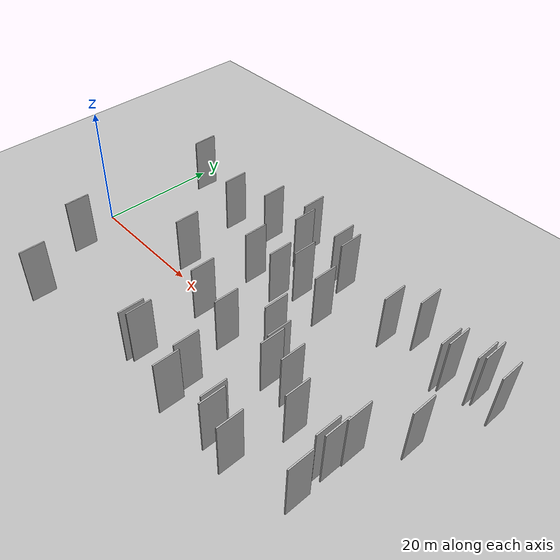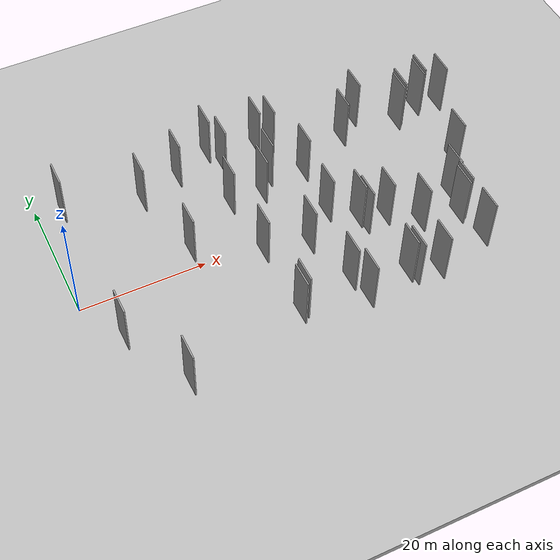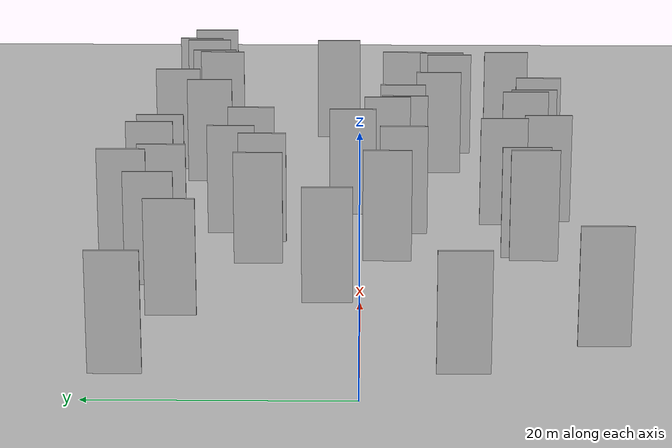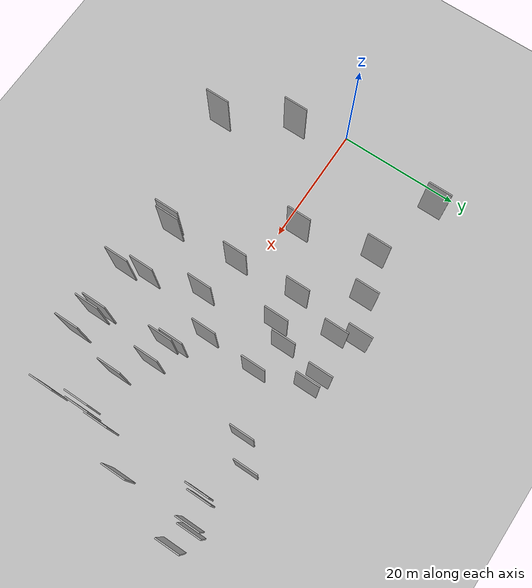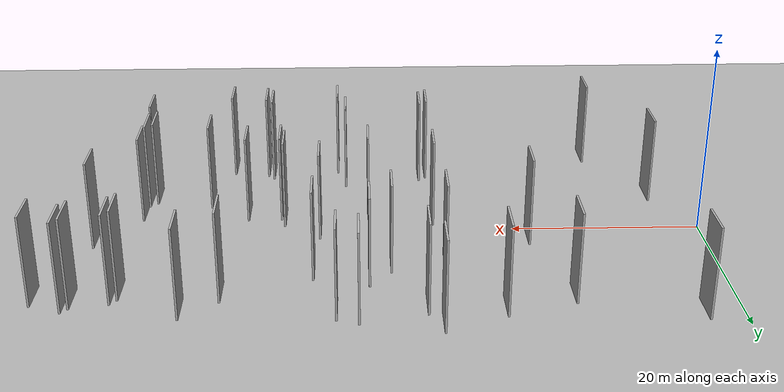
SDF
<?xml version="1.0" encoding="utf-8"?>

<sdf version="1.6">

   <world name="default">

      <gui fullscreen="0">

         <camera name="user_camera">

            <pose>-15 0 4.57585 0 0 0</pose>

            <view_controller>orbit</view_controller>

         </camera>

      </gui>

      <scene>

         <sky>

           <clouds>

             <speed>12</speed>

           </clouds>

         </sky>

         <ambient>0.4 0.4 0.4 1</ambient>

         <background>0.7 0.7 0.7 1</background>

         <shadows>1</shadows>

      </scene>

      <gravity>0 0 -9.8066</gravity>

      <magnetic_field>6e-06 2.3e-05 -4.2e-05</magnetic_field>

      <physics default="0" name="default_physics" type="ode">

         <ode>

            <solver>

               <type>quick</type>

               <iters>10</iters>

               <sor>1.0</sor>

               <use_dynamic_moi_rescaling>0</use_dynamic_moi_rescaling>

            </solver>

            <constraints>

               <cfm>0</cfm>

               <erp>0.2</erp>

               <contact_max_correcting_vel>100</contact_max_correcting_vel>

               <contact_surface_layer>0.001</contact_surface_layer>

            </constraints>

         </ode>

         <max_step_size>0.004</max_step_size>

         <real_time_factor>1</real_time_factor>

         <real_time_update_rate>250</real_time_update_rate>

      </physics>

      <light name="sun" type="directional">

         <cast_shadows>1</cast_shadows>

         <pose>0 0 10 0 0 0</pose>

         <diffuse>0.8 0.8 0.8 1</diffuse>

         <specular>0.2 0.2 0.2 1</specular>

         <attenuation>

            <range>1000</range>

            <constant>0.9</constant>

            <linear>0.01</linear>

            <quadratic>0.001</quadratic>

         </attenuation>

         <direction>-0.5 0.1 -0.9</direction>

      </light>

      <include>

         <name>ground_plane_1</name>

         <uri>model://HANNAS_ground_plane</uri>

         <pose>0 0 0  0 0 0</pose>

      </include>

      <include>

         <name>ground_plane_2</name>

         <uri>model://HANNAS_ground_plane</uri>

         <pose>100 0 0  0 0 0</pose>

      </include>

      <model name="HANNAS_wall_1">

         <static>1</static>

         <pose frame="">58.6707 -8.1486 0.0 0.000000 0.000000 1.570796</pose>

         <link name="link">

            <pose frame="">0 0 5.00 0 0 0</pose>

            <collision name="collision">

               <geometry>

                  <box>

                     <size>4.00 0.2 10.00</size>

                  </box>

               </geometry>

               <max_contacts>10</max_contacts>

               <surface>

                  <contact>

                     <ode/>

                  </contact>

                  <bounce/>

                  <friction>

                     <torsional>

                        <ode/>

                     </torsional>

                     <ode/>

                  </friction>

               </surface>

            </collision>

            <visual name="visual">

               <cast_shadows>0</cast_shadows>

               <geometry>

                  <box>

                     <size>4.00 0.2 10.00</size>

                  </box>

               </geometry>

               <material>

                  <script>

                     <uri>model://HANNAS_wall/materials/scripts</uri>

                     <uri>model://HANNAS_wall/materials/textures</uri>

                     <name>vrc/HANNAS_wall</name>

                  </script>

               </material>

            </visual>

            <self_collide>0</self_collide>

            <enable_wind>0</enable_wind>

            <kinematic>0</kinematic>

         </link>

      </model>

      <model name="HANNAS_wall_2">

         <static>1</static>

         <pose frame="">46.1520 -14.4863 0.0 0.000000 0.000000 1.570796</pose>

         <link name="link">

            <pose frame="">0 0 5.00 0 0 0</pose>

            <collision name="collision">

               <geometry>

                  <box>

                     <size>4.00 0.2 10.00</size>

                  </box>

               </geometry>

               <max_contacts>10</max_contacts>

               <surface>

                  <contact>

                     <ode/>

                  </contact>

                  <bounce/>

                  <friction>

                     <torsional>

                        <ode/>

                     </torsional>

                     <ode/>

                  </friction>

               </surface>

            </collision>

            <visual name="visual">

               <cast_shadows>0</cast_shadows>

               <geometry>

                  <box>

                     <size>4.00 0.2 10.00</size>

                  </box>

               </geometry>

               <material>

                  <script>

                     <uri>model://HANNAS_wall/materials/scripts</uri>

                     <uri>model://HANNAS_wall/materials/textures</uri>

                     <name>vrc/HANNAS_wall</name>

                  </script>

               </material>

            </visual>

            <self_collide>0</self_collide>

            <enable_wind>0</enable_wind>

            <kinematic>0</kinematic>

         </link>

      </model>

      <model name="HANNAS_wall_3">

         <static>1</static>

         <pose frame="">59.5834 12.9654 0.0 0.000000 0.000000 1.570796</pose>

         <link name="link">

            <pose frame="">0 0 5.00 0 0 0</pose>

            <collision name="collision">

               <geometry>

                  <box>

                     <size>4.00 0.2 10.00</size>

                  </box>

               </geometry>

               <max_contacts>10</max_contacts>

               <surface>

                  <contact>

                     <ode/>

                  </contact>

                  <bounce/>

                  <friction>

                     <torsional>

                        <ode/>

                     </torsional>

                     <ode/>

                  </friction>

               </surface>

            </collision>

            <visual name="visual">

               <cast_shadows>0</cast_shadows>

               <geometry>

                  <box>

                     <size>4.00 0.2 10.00</size>

                  </box>

               </geometry>

               <material>

                  <script>

                     <uri>model://HANNAS_wall/materials/scripts</uri>

                     <uri>model://HANNAS_wall/materials/textures</uri>

                     <name>vrc/HANNAS_wall</name>

                  </script>

               </material>

            </visual>

            <self_collide>0</self_collide>

            <enable_wind>0</enable_wind>

            <kinematic>0</kinematic>

         </link>

      </model>

      <model name="HANNAS_wall_4">

         <static>1</static>

         <pose frame="">53.4287 16.6725 0.0 0.000000 0.000000 1.570796</pose>

         <link name="link">

            <pose frame="">0 0 5.00 0 0 0</pose>

            <collision name="collision">

               <geometry>

                  <box>

                     <size>4.00 0.2 10.00</size>

                  </box>

               </geometry>

               <max_contacts>10</max_contacts>

               <surface>

                  <contact>

                     <ode/>

                  </contact>

                  <bounce/>

                  <friction>

                     <torsional>

                        <ode/>

                     </torsional>

                     <ode/>

                  </friction>

               </surface>

            </collision>

            <visual name="visual">

               <cast_shadows>0</cast_shadows>

               <geometry>

                  <box>

                     <size>4.00 0.2 10.00</size>

                  </box>

               </geometry>

               <material>

                  <script>

                     <uri>model://HANNAS_wall/materials/scripts</uri>

                     <uri>model://HANNAS_wall/materials/textures</uri>

                     <name>vrc/HANNAS_wall</name>

                  </script>

               </material>

            </visual>

            <self_collide>0</self_collide>

            <enable_wind>0</enable_wind>

            <kinematic>0</kinematic>

         </link>

      </model>

      <model name="HANNAS_wall_5">

         <static>1</static>

         <pose frame="">33.2438 8.2366 0.0 0.000000 0.000000 1.570796</pose>

         <link name="link">

            <pose frame="">0 0 5.00 0 0 0</pose>

            <collision name="collision">

               <geometry>

                  <box>

                     <size>4.00 0.2 10.00</size>

                  </box>

               </geometry>

               <max_contacts>10</max_contacts>

               <surface>

                  <contact>

                     <ode/>

                  </contact>

                  <bounce/>

                  <friction>

                     <torsional>

                        <ode/>

                     </torsional>

                     <ode/>

                  </friction>

               </surface>

            </collision>

            <visual name="visual">

               <cast_shadows>0</cast_shadows>

               <geometry>

                  <box>

                     <size>4.00 0.2 10.00</size>

                  </box>

               </geometry>

               <material>

                  <script>

                     <uri>model://HANNAS_wall/materials/scripts</uri>

                     <uri>model://HANNAS_wall/materials/textures</uri>

                     <name>vrc/HANNAS_wall</name>

                  </script>

               </material>

            </visual>

            <self_collide>0</self_collide>

            <enable_wind>0</enable_wind>

            <kinematic>0</kinematic>

         </link>

      </model>

      <model name="HANNAS_wall_6">

         <static>1</static>

         <pose frame="">48.3160 -3.7175 0.0 0.000000 0.000000 1.570796</pose>

         <link name="link">

            <pose frame="">0 0 5.00 0 0 0</pose>

            <collision name="collision">

               <geometry>

                  <box>

                     <size>4.00 0.2 10.00</size>

                  </box>

               </geometry>

               <max_contacts>10</max_contacts>

               <surface>

                  <contact>

                     <ode/>

                  </contact>

                  <bounce/>

                  <friction>

                     <torsional>

                        <ode/>

                     </torsional>

                     <ode/>

                  </friction>

               </surface>

            </collision>

            <visual name="visual">

               <cast_shadows>0</cast_shadows>

               <geometry>

                  <box>

                     <size>4.00 0.2 10.00</size>

                  </box>

               </geometry>

               <material>

                  <script>

                     <uri>model://HANNAS_wall/materials/scripts</uri>

                     <uri>model://HANNAS_wall/materials/textures</uri>

                     <name>vrc/HANNAS_wall</name>

                  </script>

               </material>

            </visual>

            <self_collide>0</self_collide>

            <enable_wind>0</enable_wind>

            <kinematic>0</kinematic>

         </link>

      </model>

      <model name="HANNAS_wall_7">

         <static>1</static>

         <pose frame="">63.9426 14.4578 0.0 0.000000 0.000000 1.570796</pose>

         <link name="link">

            <pose frame="">0 0 5.00 0 0 0</pose>

            <collision name="collision">

               <geometry>

                  <box>

                     <size>4.00 0.2 10.00</size>

                  </box>

               </geometry>

               <max_contacts>10</max_contacts>

               <surface>

                  <contact>

                     <ode/>

                  </contact>

                  <bounce/>

                  <friction>

                     <torsional>

                        <ode/>

                     </torsional>

                     <ode/>

                  </friction>

               </surface>

            </collision>

            <visual name="visual">

               <cast_shadows>0</cast_shadows>

               <geometry>

                  <box>

                     <size>4.00 0.2 10.00</size>

                  </box>

               </geometry>

               <material>

                  <script>

                     <uri>model://HANNAS_wall/materials/scripts</uri>

                     <uri>model://HANNAS_wall/materials/textures</uri>

                     <name>vrc/HANNAS_wall</name>

                  </script>

               </material>

            </visual>

            <self_collide>0</self_collide>

            <enable_wind>0</enable_wind>

            <kinematic>0</kinematic>

         </link>

      </model>

      <model name="HANNAS_wall_8">

         <static>1</static>

         <pose frame="">18.7328 2.5843 0.0 0.000000 0.000000 1.570796</pose>

         <link name="link">

            <pose frame="">0 0 5.00 0 0 0</pose>

            <collision name="collision">

               <geometry>

                  <box>

                     <size>4.00 0.2 10.00</size>

                  </box>

               </geometry>

               <max_contacts>10</max_contacts>

               <surface>

                  <contact>

                     <ode/>

                  </contact>

                  <bounce/>

                  <friction>

                     <torsional>

                        <ode/>

                     </torsional>

                     <ode/>

                  </friction>

               </surface>

            </collision>

            <visual name="visual">

               <cast_shadows>0</cast_shadows>

               <geometry>

                  <box>

                     <size>4.00 0.2 10.00</size>

                  </box>

               </geometry>

               <material>

                  <script>

                     <uri>model://HANNAS_wall/materials/scripts</uri>

                     <uri>model://HANNAS_wall/materials/textures</uri>

                     <name>vrc/HANNAS_wall</name>

                  </script>

               </material>

            </visual>

            <self_collide>0</self_collide>

            <enable_wind>0</enable_wind>

            <kinematic>0</kinematic>

         </link>

      </model>

      <model name="HANNAS_wall_9">

         <static>1</static>

         <pose frame="">36.5251 17.9027 0.0 0.000000 0.000000 1.570796</pose>

         <link name="link">

            <pose frame="">0 0 5.00 0 0 0</pose>

            <collision name="collision">

               <geometry>

                  <box>

                     <size>4.00 0.2 10.00</size>

                  </box>

               </geometry>

               <max_contacts>10</max_contacts>

               <surface>

                  <contact>

                     <ode/>

                  </contact>

                  <bounce/>

                  <friction>

                     <torsional>

                        <ode/>

                     </torsional>

                     <ode/>

                  </friction>

               </surface>

            </collision>

            <visual name="visual">

               <cast_shadows>0</cast_shadows>

               <geometry>

                  <box>

                     <size>4.00 0.2 10.00</size>

                  </box>

               </geometry>

               <material>

                  <script>

                     <uri>model://HANNAS_wall/materials/scripts</uri>

                     <uri>model://HANNAS_wall/materials/textures</uri>

                     <name>vrc/HANNAS_wall</name>

                  </script>

               </material>

            </visual>

            <self_collide>0</self_collide>

            <enable_wind>0</enable_wind>

            <kinematic>0</kinematic>

         </link>

      </model>

      <model name="HANNAS_wall_10">

         <static>1</static>

         <pose frame="">4.0936 -7.6153 0.0 0.000000 0.000000 1.570796</pose>

         <link name="link">

            <pose frame="">0 0 5.00 0 0 0</pose>

            <collision name="collision">

               <geometry>

                  <box>

                     <size>4.00 0.2 10.00</size>

                  </box>

               </geometry>

               <max_contacts>10</max_contacts>

               <surface>

                  <contact>

                     <ode/>

                  </contact>

                  <bounce/>

                  <friction>

                     <torsional>

                        <ode/>

                     </torsional>

                     <ode/>

                  </friction>

               </surface>

            </collision>

            <visual name="visual">

               <cast_shadows>0</cast_shadows>

               <geometry>

                  <box>

                     <size>4.00 0.2 10.00</size>

                  </box>

               </geometry>

               <material>

                  <script>

                     <uri>model://HANNAS_wall/materials/scripts</uri>

                     <uri>model://HANNAS_wall/materials/textures</uri>

                     <name>vrc/HANNAS_wall</name>

                  </script>

               </material>

            </visual>

            <self_collide>0</self_collide>

            <enable_wind>0</enable_wind>

            <kinematic>0</kinematic>

         </link>

      </model>

      <model name="HANNAS_wall_11">

         <static>1</static>

         <pose frame="">67.7503 13.9354 0.0 0.000000 0.000000 1.570796</pose>

         <link name="link">

            <pose frame="">0 0 5.00 0 0 0</pose>

            <collision name="collision">

               <geometry>

                  <box>

                     <size>4.00 0.2 10.00</size>

                  </box>

               </geometry>

               <max_contacts>10</max_contacts>

               <surface>

                  <contact>

                     <ode/>

                  </contact>

                  <bounce/>

                  <friction>

                     <torsional>

                        <ode/>

                     </torsional>

                     <ode/>

                  </friction>

               </surface>

            </collision>

            <visual name="visual">

               <cast_shadows>0</cast_shadows>

               <geometry>

                  <box>

                     <size>4.00 0.2 10.00</size>

                  </box>

               </geometry>

               <material>

                  <script>

                     <uri>model://HANNAS_wall/materials/scripts</uri>

                     <uri>model://HANNAS_wall/materials/textures</uri>

                     <name>vrc/HANNAS_wall</name>

                  </script>

               </material>

            </visual>

            <self_collide>0</self_collide>

            <enable_wind>0</enable_wind>

            <kinematic>0</kinematic>

         </link>

      </model>

      <model name="HANNAS_wall_12">

         <static>1</static>

         <pose frame="">9.6535 -18.3392 0.0 0.000000 0.000000 1.570796</pose>

         <link name="link">

            <pose frame="">0 0 5.00 0 0 0</pose>

            <collision name="collision">

               <geometry>

                  <box>

                     <size>4.00 0.2 10.00</size>

                  </box>

               </geometry>

               <max_contacts>10</max_contacts>

               <surface>

                  <contact>

                     <ode/>

                  </contact>

                  <bounce/>

                  <friction>

                     <torsional>

                        <ode/>

                     </torsional>

                     <ode/>

                  </friction>

               </surface>

            </collision>

            <visual name="visual">

               <cast_shadows>0</cast_shadows>

               <geometry>

                  <box>

                     <size>4.00 0.2 10.00</size>

                  </box>

               </geometry>

               <material>

                  <script>

                     <uri>model://HANNAS_wall/materials/scripts</uri>

                     <uri>model://HANNAS_wall/materials/textures</uri>

                     <name>vrc/HANNAS_wall</name>

                  </script>

               </material>

            </visual>

            <self_collide>0</self_collide>

            <enable_wind>0</enable_wind>

            <kinematic>0</kinematic>

         </link>

      </model>

      <model name="HANNAS_wall_13">

         <static>1</static>

         <pose frame="">63.9111 2.1526 0.0 0.000000 0.000000 1.570796</pose>

         <link name="link">

            <pose frame="">0 0 5.00 0 0 0</pose>

            <collision name="collision">

               <geometry>

                  <box>

                     <size>4.00 0.2 10.00</size>

                  </box>

               </geometry>

               <max_contacts>10</max_contacts>

               <surface>

                  <contact>

                     <ode/>

                  </contact>

                  <bounce/>

                  <friction>

                     <torsional>

                        <ode/>

                     </torsional>

                     <ode/>

                  </friction>

               </surface>

            </collision>

            <visual name="visual">

               <cast_shadows>0</cast_shadows>

               <geometry>

                  <box>

                     <size>4.00 0.2 10.00</size>

                  </box>

               </geometry>

               <material>

                  <script>

                     <uri>model://HANNAS_wall/materials/scripts</uri>

                     <uri>model://HANNAS_wall/materials/textures</uri>

                     <name>vrc/HANNAS_wall</name>

                  </script>

               </material>

            </visual>

            <self_collide>0</self_collide>

            <enable_wind>0</enable_wind>

            <kinematic>0</kinematic>

         </link>

      </model>

      <model name="HANNAS_wall_14">

         <static>1</static>

         <pose frame="">59.4372 -7.4602 0.0 0.000000 0.000000 1.570796</pose>

         <link name="link">

            <pose frame="">0 0 5.00 0 0 0</pose>

            <collision name="collision">

               <geometry>

                  <box>

                     <size>4.00 0.2 10.00</size>

                  </box>

               </geometry>

               <max_contacts>10</max_contacts>

               <surface>

                  <contact>

                     <ode/>

                  </contact>

                  <bounce/>

                  <friction>

                     <torsional>

                        <ode/>

                     </torsional>

                     <ode/>

                  </friction>

               </surface>

            </collision>

            <visual name="visual">

               <cast_shadows>0</cast_shadows>

               <geometry>

                  <box>

                     <size>4.00 0.2 10.00</size>

                  </box>

               </geometry>

               <material>

                  <script>

                     <uri>model://HANNAS_wall/materials/scripts</uri>

                     <uri>model://HANNAS_wall/materials/textures</uri>

                     <name>vrc/HANNAS_wall</name>

                  </script>

               </material>

            </visual>

            <self_collide>0</self_collide>

            <enable_wind>0</enable_wind>

            <kinematic>0</kinematic>

         </link>

      </model>

      <model name="HANNAS_wall_15">

         <static>1</static>

         <pose frame="">37.8419 -12.1859 0.0 0.000000 0.000000 1.570796</pose>

         <link name="link">

            <pose frame="">0 0 5.00 0 0 0</pose>

            <collision name="collision">

               <geometry>

                  <box>

                     <size>4.00 0.2 10.00</size>

                  </box>

               </geometry>

               <max_contacts>10</max_contacts>

               <surface>

                  <contact>

                     <ode/>

                  </contact>

                  <bounce/>

                  <friction>

                     <torsional>

                        <ode/>

                     </torsional>

                     <ode/>

                  </friction>

               </surface>

            </collision>

            <visual name="visual">

               <cast_shadows>0</cast_shadows>

               <geometry>

                  <box>

                     <size>4.00 0.2 10.00</size>

                  </box>

               </geometry>

               <material>

                  <script>

                     <uri>model://HANNAS_wall/materials/scripts</uri>

                     <uri>model://HANNAS_wall/materials/textures</uri>

                     <name>vrc/HANNAS_wall</name>

                  </script>

               </material>

            </visual>

            <self_collide>0</self_collide>

            <enable_wind>0</enable_wind>

            <kinematic>0</kinematic>

         </link>

      </model>

      <model name="HANNAS_wall_16">

         <static>1</static>

         <pose frame="">3.8791 17.8621 0.0 0.000000 0.000000 1.570796</pose>

         <link name="link">

            <pose frame="">0 0 5.00 0 0 0</pose>

            <collision name="collision">

               <geometry>

                  <box>

                     <size>4.00 0.2 10.00</size>

                  </box>

               </geometry>

               <max_contacts>10</max_contacts>

               <surface>

                  <contact>

                     <ode/>

                  </contact>

                  <bounce/>

                  <friction>

                     <torsional>

                        <ode/>

                     </torsional>

                     <ode/>

                  </friction>

               </surface>

            </collision>

            <visual name="visual">

               <cast_shadows>0</cast_shadows>

               <geometry>

                  <box>

                     <size>4.00 0.2 10.00</size>

                  </box>

               </geometry>

               <material>

                  <script>

                     <uri>model://HANNAS_wall/materials/scripts</uri>

                     <uri>model://HANNAS_wall/materials/textures</uri>

                     <name>vrc/HANNAS_wall</name>

                  </script>

               </material>

            </visual>

            <self_collide>0</self_collide>

            <enable_wind>0</enable_wind>

            <kinematic>0</kinematic>

         </link>

      </model>

      <model name="HANNAS_wall_17">

         <static>1</static>

         <pose frame="">38.7760 -15.9822 0.0 0.000000 0.000000 1.570796</pose>

         <link name="link">

            <pose frame="">0 0 5.00 0 0 0</pose>

            <collision name="collision">

               <geometry>

                  <box>

                     <size>4.00 0.2 10.00</size>

                  </box>

               </geometry>

               <max_contacts>10</max_contacts>

               <surface>

                  <contact>

                     <ode/>

                  </contact>

                  <bounce/>

                  <friction>

                     <torsional>

                        <ode/>

                     </torsional>

                     <ode/>

                  </friction>

               </surface>

            </collision>

            <visual name="visual">

               <cast_shadows>0</cast_shadows>

               <geometry>

                  <box>

                     <size>4.00 0.2 10.00</size>

                  </box>

               </geometry>

               <material>

                  <script>

                     <uri>model://HANNAS_wall/materials/scripts</uri>

                     <uri>model://HANNAS_wall/materials/textures</uri>

                     <name>vrc/HANNAS_wall</name>

                  </script>

               </material>

            </visual>

            <self_collide>0</self_collide>

            <enable_wind>0</enable_wind>

            <kinematic>0</kinematic>

         </link>

      </model>

      <model name="HANNAS_wall_18">

         <static>1</static>

         <pose frame="">38.6498 17.1384 0.0 0.000000 0.000000 1.570796</pose>

         <link name="link">

            <pose frame="">0 0 5.00 0 0 0</pose>

            <collision name="collision">

               <geometry>

                  <box>

                     <size>4.00 0.2 10.00</size>

                  </box>

               </geometry>

               <max_contacts>10</max_contacts>

               <surface>

                  <contact>

                     <ode/>

                  </contact>

                  <bounce/>

                  <friction>

                     <torsional>

                        <ode/>

                     </torsional>

                     <ode/>

                  </friction>

               </surface>

            </collision>

            <visual name="visual">

               <cast_shadows>0</cast_shadows>

               <geometry>

                  <box>

                     <size>4.00 0.2 10.00</size>

                  </box>

               </geometry>

               <material>

                  <script>

                     <uri>model://HANNAS_wall/materials/scripts</uri>

                     <uri>model://HANNAS_wall/materials/textures</uri>

                     <name>vrc/HANNAS_wall</name>

                  </script>

               </material>

            </visual>

            <self_collide>0</self_collide>

            <enable_wind>0</enable_wind>

            <kinematic>0</kinematic>

         </link>

      </model>

      <model name="HANNAS_wall_19">

         <static>1</static>

         <pose frame="">29.4595 -13.5937 0.0 0.000000 0.000000 1.570796</pose>

         <link name="link">

            <pose frame="">0 0 5.00 0 0 0</pose>

            <collision name="collision">

               <geometry>

                  <box>

                     <size>4.00 0.2 10.00</size>

                  </box>

               </geometry>

               <max_contacts>10</max_contacts>

               <surface>

                  <contact>

                     <ode/>

                  </contact>

                  <bounce/>

                  <friction>

                     <torsional>

                        <ode/>

                     </torsional>

                     <ode/>

                  </friction>

               </surface>

            </collision>

            <visual name="visual">

               <cast_shadows>0</cast_shadows>

               <geometry>

                  <box>

                     <size>4.00 0.2 10.00</size>

                  </box>

               </geometry>

               <material>

                  <script>

                     <uri>model://HANNAS_wall/materials/scripts</uri>

                     <uri>model://HANNAS_wall/materials/textures</uri>

                     <name>vrc/HANNAS_wall</name>

                  </script>

               </material>

            </visual>

            <self_collide>0</self_collide>

            <enable_wind>0</enable_wind>

            <kinematic>0</kinematic>

         </link>

      </model>

      <model name="HANNAS_wall_20">

         <static>1</static>

         <pose frame="">59.7148 -13.4500 0.0 0.000000 0.000000 1.570796</pose>

         <link name="link">

            <pose frame="">0 0 5.00 0 0 0</pose>

            <collision name="collision">

               <geometry>

                  <box>

                     <size>4.00 0.2 10.00</size>

                  </box>

               </geometry>

               <max_contacts>10</max_contacts>

               <surface>

                  <contact>

                     <ode/>

                  </contact>

                  <bounce/>

                  <friction>

                     <torsional>

                        <ode/>

                     </torsional>

                     <ode/>

                  </friction>

               </surface>

            </collision>

            <visual name="visual">

               <cast_shadows>0</cast_shadows>

               <geometry>

                  <box>

                     <size>4.00 0.2 10.00</size>

                  </box>

               </geometry>

               <material>

                  <script>

                     <uri>model://HANNAS_wall/materials/scripts</uri>

                     <uri>model://HANNAS_wall/materials/textures</uri>

                     <name>vrc/HANNAS_wall</name>

                  </script>

               </material>

            </visual>

            <self_collide>0</self_collide>

            <enable_wind>0</enable_wind>

            <kinematic>0</kinematic>

         </link>

      </model>

      <model name="HANNAS_wall_21">

         <static>1</static>

         <pose frame="">60.2219 13.7264 0.0 0.000000 0.000000 1.570796</pose>

         <link name="link">

            <pose frame="">0 0 5.00 0 0 0</pose>

            <collision name="collision">

               <geometry>

                  <box>

                     <size>4.00 0.2 10.00</size>

                  </box>

               </geometry>

               <max_contacts>10</max_contacts>

               <surface>

                  <contact>

                     <ode/>

                  </contact>

                  <bounce/>

                  <friction>

                     <torsional>

                        <ode/>

                     </torsional>

                     <ode/>

                  </friction>

               </surface>

            </collision>

            <visual name="visual">

               <cast_shadows>0</cast_shadows>

               <geometry>

                  <box>

                     <size>4.00 0.2 10.00</size>

                  </box>

               </geometry>

               <material>

                  <script>

                     <uri>model://HANNAS_wall/materials/scripts</uri>

                     <uri>model://HANNAS_wall/materials/textures</uri>

                     <name>vrc/HANNAS_wall</name>

                  </script>

               </material>

            </visual>

            <self_collide>0</self_collide>

            <enable_wind>0</enable_wind>

            <kinematic>0</kinematic>

         </link>

      </model>

      <model name="HANNAS_wall_22">

         <static>1</static>

         <pose frame="">35.4595 10.9581 0.0 0.000000 0.000000 1.570796</pose>

         <link name="link">

            <pose frame="">0 0 5.00 0 0 0</pose>

            <collision name="collision">

               <geometry>

                  <box>

                     <size>4.00 0.2 10.00</size>

                  </box>

               </geometry>

               <max_contacts>10</max_contacts>

               <surface>

                  <contact>

                     <ode/>

                  </contact>

                  <bounce/>

                  <friction>

                     <torsional>

                        <ode/>

                     </torsional>

                     <ode/>

                  </friction>

               </surface>

            </collision>

            <visual name="visual">

               <cast_shadows>0</cast_shadows>

               <geometry>

                  <box>

                     <size>4.00 0.2 10.00</size>

                  </box>

               </geometry>

               <material>

                  <script>

                     <uri>model://HANNAS_wall/materials/scripts</uri>

                     <uri>model://HANNAS_wall/materials/textures</uri>

                     <name>vrc/HANNAS_wall</name>

                  </script>

               </material>

            </visual>

            <self_collide>0</self_collide>

            <enable_wind>0</enable_wind>

            <kinematic>0</kinematic>

         </link>

      </model>

      <model name="HANNAS_wall_23">

         <static>1</static>

         <pose frame="">59.6441 -4.0105 0.0 0.000000 0.000000 1.570796</pose>

         <link name="link">

            <pose frame="">0 0 5.00 0 0 0</pose>

            <collision name="collision">

               <geometry>

                  <box>

                     <size>4.00 0.2 10.00</size>

                  </box>

               </geometry>

               <max_contacts>10</max_contacts>

               <surface>

                  <contact>

                     <ode/>

                  </contact>

                  <bounce/>

                  <friction>

                     <torsional>

                        <ode/>

                     </torsional>

                     <ode/>

                  </friction>

               </surface>

            </collision>

            <visual name="visual">

               <cast_shadows>0</cast_shadows>

               <geometry>

                  <box>

                     <size>4.00 0.2 10.00</size>

                  </box>

               </geometry>

               <material>

                  <script>

                     <uri>model://HANNAS_wall/materials/scripts</uri>

                     <uri>model://HANNAS_wall/materials/textures</uri>

                     <name>vrc/HANNAS_wall</name>

                  </script>

               </material>

            </visual>

            <self_collide>0</self_collide>

            <enable_wind>0</enable_wind>

            <kinematic>0</kinematic>

         </link>

      </model>

      <model name="HANNAS_wall_24">

         <static>1</static>

         <pose frame="">40.5153 0.6909 0.0 0.000000 0.000000 1.570796</pose>

         <link name="link">

            <pose frame="">0 0 5.00 0 0 0</pose>

            <collision name="collision">

               <geometry>

                  <box>

                     <size>4.00 0.2 10.00</size>

                  </box>

               </geometry>

               <max_contacts>10</max_contacts>

               <surface>

                  <contact>

                     <ode/>

                  </contact>

                  <bounce/>

                  <friction>

                     <torsional>

                        <ode/>

                     </torsional>

                     <ode/>

                  </friction>

               </surface>

            </collision>

            <visual name="visual">

               <cast_shadows>0</cast_shadows>

               <geometry>

                  <box>

                     <size>4.00 0.2 10.00</size>

                  </box>

               </geometry>

               <material>

                  <script>

                     <uri>model://HANNAS_wall/materials/scripts</uri>

                     <uri>model://HANNAS_wall/materials/textures</uri>

                     <name>vrc/HANNAS_wall</name>

                  </script>

               </material>

            </visual>

            <self_collide>0</self_collide>

            <enable_wind>0</enable_wind>

            <kinematic>0</kinematic>

         </link>

      </model>

      <model name="HANNAS_wall_25">

         <static>1</static>

         <pose frame="">22.5791 16.8643 0.0 0.000000 0.000000 1.570796</pose>

         <link name="link">

            <pose frame="">0 0 5.00 0 0 0</pose>

            <collision name="collision">

               <geometry>

                  <box>

                     <size>4.00 0.2 10.00</size>

                  </box>

               </geometry>

               <max_contacts>10</max_contacts>

               <surface>

                  <contact>

                     <ode/>

                  </contact>

                  <bounce/>

                  <friction>

                     <torsional>

                        <ode/>

                     </torsional>

                     <ode/>

                  </friction>

               </surface>

            </collision>

            <visual name="visual">

               <cast_shadows>0</cast_shadows>

               <geometry>

                  <box>

                     <size>4.00 0.2 10.00</size>

                  </box>

               </geometry>

               <material>

                  <script>

                     <uri>model://HANNAS_wall/materials/scripts</uri>

                     <uri>model://HANNAS_wall/materials/textures</uri>

                     <name>vrc/HANNAS_wall</name>

                  </script>

               </material>

            </visual>

            <self_collide>0</self_collide>

            <enable_wind>0</enable_wind>

            <kinematic>0</kinematic>

         </link>

      </model>

      <model name="HANNAS_wall_26">

         <static>1</static>

         <pose frame="">30.0014 16.3747 0.0 0.000000 0.000000 1.570796</pose>

         <link name="link">

            <pose frame="">0 0 5.00 0 0 0</pose>

            <collision name="collision">

               <geometry>

                  <box>

                     <size>4.00 0.2 10.00</size>

                  </box>

               </geometry>

               <max_contacts>10</max_contacts>

               <surface>

                  <contact>

                     <ode/>

                  </contact>

                  <bounce/>

                  <friction>

                     <torsional>

                        <ode/>

                     </torsional>

                     <ode/>

                  </friction>

               </surface>

            </collision>

            <visual name="visual">

               <cast_shadows>0</cast_shadows>

               <geometry>

                  <box>

                     <size>4.00 0.2 10.00</size>

                  </box>

               </geometry>

               <material>

                  <script>

                     <uri>model://HANNAS_wall/materials/scripts</uri>

                     <uri>model://HANNAS_wall/materials/textures</uri>

                     <name>vrc/HANNAS_wall</name>

                  </script>

               </material>

            </visual>

            <self_collide>0</self_collide>

            <enable_wind>0</enable_wind>

            <kinematic>0</kinematic>

         </link>

      </model>

      <model name="HANNAS_wall_27">

         <static>1</static>

         <pose frame="">35.4004 -3.6346 0.0 0.000000 0.000000 1.570796</pose>

         <link name="link">

            <pose frame="">0 0 5.00 0 0 0</pose>

            <collision name="collision">

               <geometry>

                  <box>

                     <size>4.00 0.2 10.00</size>

                  </box>

               </geometry>

               <max_contacts>10</max_contacts>

               <surface>

                  <contact>

                     <ode/>

                  </contact>

                  <bounce/>

                  <friction>

                     <torsional>

                        <ode/>

                     </torsional>

                     <ode/>

                  </friction>

               </surface>

            </collision>

            <visual name="visual">

               <cast_shadows>0</cast_shadows>

               <geometry>

                  <box>

                     <size>4.00 0.2 10.00</size>

                  </box>

               </geometry>

               <material>

                  <script>

                     <uri>model://HANNAS_wall/materials/scripts</uri>

                     <uri>model://HANNAS_wall/materials/textures</uri>

                     <name>vrc/HANNAS_wall</name>

                  </script>

               </material>

            </visual>

            <self_collide>0</self_collide>

            <enable_wind>0</enable_wind>

            <kinematic>0</kinematic>

         </link>

      </model>

      <model name="HANNAS_wall_28">

         <static>1</static>

         <pose frame="">49.8373 13.6059 0.0 0.000000 0.000000 1.570796</pose>

         <link name="link">

            <pose frame="">0 0 5.00 0 0 0</pose>

            <collision name="collision">

               <geometry>

                  <box>

                     <size>4.00 0.2 10.00</size>

                  </box>

               </geometry>

               <max_contacts>10</max_contacts>

               <surface>

                  <contact>

                     <ode/>

                  </contact>

                  <bounce/>

                  <friction>

                     <torsional>

                        <ode/>

                     </torsional>

                     <ode/>

                  </friction>

               </surface>

            </collision>

            <visual name="visual">

               <cast_shadows>0</cast_shadows>

               <geometry>

                  <box>

                     <size>4.00 0.2 10.00</size>

                  </box>

               </geometry>

               <material>

                  <script>

                     <uri>model://HANNAS_wall/materials/scripts</uri>

                     <uri>model://HANNAS_wall/materials/textures</uri>

                     <name>vrc/HANNAS_wall</name>

                  </script>

               </material>

            </visual>

            <self_collide>0</self_collide>

            <enable_wind>0</enable_wind>

            <kinematic>0</kinematic>

         </link>

      </model>

      <model name="HANNAS_wall_29">

         <static>1</static>

         <pose frame="">15.7849 14.6574 0.0 0.000000 0.000000 1.570796</pose>

         <link name="link">

            <pose frame="">0 0 5.00 0 0 0</pose>

            <collision name="collision">

               <geometry>

                  <box>

                     <size>4.00 0.2 10.00</size>

                  </box>

               </geometry>

               <max_contacts>10</max_contacts>

               <surface>

                  <contact>

                     <ode/>

                  </contact>

                  <bounce/>

                  <friction>

                     <torsional>

                        <ode/>

                     </torsional>

                     <ode/>

                  </friction>

               </surface>

            </collision>

            <visual name="visual">

               <cast_shadows>0</cast_shadows>

               <geometry>

                  <box>

                     <size>4.00 0.2 10.00</size>

                  </box>

               </geometry>

               <material>

                  <script>

                     <uri>model://HANNAS_wall/materials/scripts</uri>

                     <uri>model://HANNAS_wall/materials/textures</uri>

                     <name>vrc/HANNAS_wall</name>

                  </script>

               </material>

            </visual>

            <self_collide>0</self_collide>

            <enable_wind>0</enable_wind>

            <kinematic>0</kinematic>

         </link>

      </model>

      <model name="HANNAS_wall_30">

         <static>1</static>

         <pose frame="">44.3227 -2.3099 0.0 0.000000 0.000000 1.570796</pose>

         <link name="link">

            <pose frame="">0 0 5.00 0 0 0</pose>

            <collision name="collision">

               <geometry>

                  <box>

                     <size>4.00 0.2 10.00</size>

                  </box>

               </geometry>

               <max_contacts>10</max_contacts>

               <surface>

                  <contact>

                     <ode/>

                  </contact>

                  <bounce/>

                  <friction>

                     <torsional>

                        <ode/>

                     </torsional>

                     <ode/>

                  </friction>

               </surface>

            </collision>

            <visual name="visual">

               <cast_shadows>0</cast_shadows>

               <geometry>

                  <box>

                     <size>4.00 0.2 10.00</size>

                  </box>

               </geometry>

               <material>

                  <script>

                     <uri>model://HANNAS_wall/materials/scripts</uri>

                     <uri>model://HANNAS_wall/materials/textures</uri>

                     <name>vrc/HANNAS_wall</name>

                  </script>

               </material>

            </visual>

            <self_collide>0</self_collide>

            <enable_wind>0</enable_wind>

            <kinematic>0</kinematic>

         </link>

      </model>

      <model name="HANNAS_wall_31">

         <static>1</static>

         <pose frame="">46.8153 -15.2625 0.0 0.000000 0.000000 1.570796</pose>

         <link name="link">

            <pose frame="">0 0 5.00 0 0 0</pose>

            <collision name="collision">

               <geometry>

                  <box>

                     <size>4.00 0.2 10.00</size>

                  </box>

               </geometry>

               <max_contacts>10</max_contacts>

               <surface>

                  <contact>

                     <ode/>

                  </contact>

                  <bounce/>

                  <friction>

                     <torsional>

                        <ode/>

                     </torsional>

                     <ode/>

                  </friction>

               </surface>

            </collision>

            <visual name="visual">

               <cast_shadows>0</cast_shadows>

               <geometry>

                  <box>

                     <size>4.00 0.2 10.00</size>

                  </box>

               </geometry>

               <material>

                  <script>

                     <uri>model://HANNAS_wall/materials/scripts</uri>

                     <uri>model://HANNAS_wall/materials/textures</uri>

                     <name>vrc/HANNAS_wall</name>

                  </script>

               </material>

            </visual>

            <self_collide>0</self_collide>

            <enable_wind>0</enable_wind>

            <kinematic>0</kinematic>

         </link>

      </model>

      <model name="HANNAS_wall_32">

         <static>1</static>

         <pose frame="">50.7058 -15.8824 0.0 0.000000 0.000000 1.570796</pose>

         <link name="link">

            <pose frame="">0 0 5.00 0 0 0</pose>

            <collision name="collision">

               <geometry>

                  <box>

                     <size>4.00 0.2 10.00</size>

                  </box>

               </geometry>

               <max_contacts>10</max_contacts>

               <surface>

                  <contact>

                     <ode/>

                  </contact>

                  <bounce/>

                  <friction>

                     <torsional>

                        <ode/>

                     </torsional>

                     <ode/>

                  </friction>

               </surface>

            </collision>

            <visual name="visual">

               <cast_shadows>0</cast_shadows>

               <geometry>

                  <box>

                     <size>4.00 0.2 10.00</size>

                  </box>

               </geometry>

               <material>

                  <script>

                     <uri>model://HANNAS_wall/materials/scripts</uri>

                     <uri>model://HANNAS_wall/materials/textures</uri>

                     <name>vrc/HANNAS_wall</name>

                  </script>

               </material>

            </visual>

            <self_collide>0</self_collide>

            <enable_wind>0</enable_wind>

            <kinematic>0</kinematic>

         </link>

      </model>

      <model name="HANNAS_wall_33">

         <static>1</static>

         <pose frame="">41.0029 9.4932 0.0 0.000000 0.000000 1.570796</pose>

         <link name="link">

            <pose frame="">0 0 5.00 0 0 0</pose>

            <collision name="collision">

               <geometry>

                  <box>

                     <size>4.00 0.2 10.00</size>

                  </box>

               </geometry>

               <max_contacts>10</max_contacts>

               <surface>

                  <contact>

                     <ode/>

                  </contact>

                  <bounce/>

                  <friction>

                     <torsional>

                        <ode/>

                     </torsional>

                     <ode/>

                  </friction>

               </surface>

            </collision>

            <visual name="visual">

               <cast_shadows>0</cast_shadows>

               <geometry>

                  <box>

                     <size>4.00 0.2 10.00</size>

                  </box>

               </geometry>

               <material>

                  <script>

                     <uri>model://HANNAS_wall/materials/scripts</uri>

                     <uri>model://HANNAS_wall/materials/textures</uri>

                     <name>vrc/HANNAS_wall</name>

                  </script>

               </material>

            </visual>

            <self_collide>0</self_collide>

            <enable_wind>0</enable_wind>

            <kinematic>0</kinematic>

         </link>

      </model>

      <model name="HANNAS_wall_34">

         <static>1</static>

         <pose frame="">64.5708 15.1845 0.0 0.000000 0.000000 1.570796</pose>

         <link name="link">

            <pose frame="">0 0 5.00 0 0 0</pose>

            <collision name="collision">

               <geometry>

                  <box>

                     <size>4.00 0.2 10.00</size>

                  </box>

               </geometry>

               <max_contacts>10</max_contacts>

               <surface>

                  <contact>

                     <ode/>

                  </contact>

                  <bounce/>

                  <friction>

                     <torsional>

                        <ode/>

                     </torsional>

                     <ode/>

                  </friction>

               </surface>

            </collision>

            <visual name="visual">

               <cast_shadows>0</cast_shadows>

               <geometry>

                  <box>

                     <size>4.00 0.2 10.00</size>

                  </box>

               </geometry>

               <material>

                  <script>

                     <uri>model://HANNAS_wall/materials/scripts</uri>

                     <uri>model://HANNAS_wall/materials/textures</uri>

                     <name>vrc/HANNAS_wall</name>

                  </script>

               </material>

            </visual>

            <self_collide>0</self_collide>

            <enable_wind>0</enable_wind>

            <kinematic>0</kinematic>

         </link>

      </model>

      <model name="HANNAS_wall_35">

         <static>1</static>

         <pose frame="">27.8068 8.3616 0.0 0.000000 0.000000 1.570796</pose>

         <link name="link">

            <pose frame="">0 0 5.00 0 0 0</pose>

            <collision name="collision">

               <geometry>

                  <box>

                     <size>4.00 0.2 10.00</size>

                  </box>

               </geometry>

               <max_contacts>10</max_contacts>

               <surface>

                  <contact>

                     <ode/>

                  </contact>

                  <bounce/>

                  <friction>

                     <torsional>

                        <ode/>

                     </torsional>

                     <ode/>

                  </friction>

               </surface>

            </collision>

            <visual name="visual">

               <cast_shadows>0</cast_shadows>

               <geometry>

                  <box>

                     <size>4.00 0.2 10.00</size>

                  </box>

               </geometry>

               <material>

                  <script>

                     <uri>model://HANNAS_wall/materials/scripts</uri>

                     <uri>model://HANNAS_wall/materials/textures</uri>

                     <name>vrc/HANNAS_wall</name>

                  </script>

               </material>

            </visual>

            <self_collide>0</self_collide>

            <enable_wind>0</enable_wind>

            <kinematic>0</kinematic>

         </link>

      </model>

      <model name="HANNAS_wall_36">

         <static>1</static>

         <pose frame="">28.5121 -2.1956 0.0 0.000000 0.000000 1.570796</pose>

         <link name="link">

            <pose frame="">0 0 5.00 0 0 0</pose>

            <collision name="collision">

               <geometry>

                  <box>

                     <size>4.00 0.2 10.00</size>

                  </box>

               </geometry>

               <max_contacts>10</max_contacts>

               <surface>

                  <contact>

                     <ode/>

                  </contact>

                  <bounce/>

                  <friction>

                     <torsional>

                        <ode/>

                     </torsional>

                     <ode/>

                  </friction>

               </surface>

            </collision>

            <visual name="visual">

               <cast_shadows>0</cast_shadows>

               <geometry>

                  <box>

                     <size>4.00 0.2 10.00</size>

                  </box>

               </geometry>

               <material>

                  <script>

                     <uri>model://HANNAS_wall/materials/scripts</uri>

                     <uri>model://HANNAS_wall/materials/textures</uri>

                     <name>vrc/HANNAS_wall</name>

                  </script>

               </material>

            </visual>

            <self_collide>0</self_collide>

            <enable_wind>0</enable_wind>

            <kinematic>0</kinematic>

         </link>

      </model>

      <model name="HANNAS_wall_37">

         <static>1</static>

         <pose frame="">28.6859 -14.2539 0.0 0.000000 0.000000 1.570796</pose>

         <link name="link">

            <pose frame="">0 0 5.00 0 0 0</pose>

            <collision name="collision">

               <geometry>

                  <box>

                     <size>4.00 0.2 10.00</size>

                  </box>

               </geometry>

               <max_contacts>10</max_contacts>

               <surface>

                  <contact>

                     <ode/>

                  </contact>

                  <bounce/>

                  <friction>

                     <torsional>

                        <ode/>

                     </torsional>

                     <ode/>

                  </friction>

               </surface>

            </collision>

            <visual name="visual">

               <cast_shadows>0</cast_shadows>

               <geometry>

                  <box>

                     <size>4.00 0.2 10.00</size>

                  </box>

               </geometry>

               <material>

                  <script>

                     <uri>model://HANNAS_wall/materials/scripts</uri>

                     <uri>model://HANNAS_wall/materials/textures</uri>

                     <name>vrc/HANNAS_wall</name>

                  </script>

               </material>

            </visual>

            <self_collide>0</self_collide>

            <enable_wind>0</enable_wind>

            <kinematic>0</kinematic>

         </link>

      </model>

      <model name="HANNAS_wall_38">

         <static>1</static>

         <pose frame="">52.5702 -7.0085 0.0 0.000000 0.000000 1.570796</pose>

         <link name="link">

            <pose frame="">0 0 5.00 0 0 0</pose>

            <collision name="collision">

               <geometry>

                  <box>

                     <size>4.00 0.2 10.00</size>

                  </box>

               </geometry>

               <max_contacts>10</max_contacts>

               <surface>

                  <contact>

                     <ode/>

                  </contact>

                  <bounce/>

                  <friction>

                     <torsional>

                        <ode/>

                     </torsional>

                     <ode/>

                  </friction>

               </surface>

            </collision>

            <visual name="visual">

               <cast_shadows>0</cast_shadows>

               <geometry>

                  <box>

                     <size>4.00 0.2 10.00</size>

                  </box>

               </geometry>

               <material>

                  <script>

                     <uri>model://HANNAS_wall/materials/scripts</uri>

                     <uri>model://HANNAS_wall/materials/textures</uri>

                     <name>vrc/HANNAS_wall</name>

                  </script>

               </material>

            </visual>

            <self_collide>0</self_collide>

            <enable_wind>0</enable_wind>

            <kinematic>0</kinematic>

         </link>

      </model>

      <model name="HANNAS_wall_39">

         <static>1</static>

         <pose frame="">28.6573 19.5619 0.0 0.000000 0.000000 1.570796</pose>

         <link name="link">

            <pose frame="">0 0 5.00 0 0 0</pose>

            <collision name="collision">

               <geometry>

                  <box>

                     <size>4.00 0.2 10.00</size>

                  </box>

               </geometry>

               <max_contacts>10</max_contacts>

               <surface>

                  <contact>

                     <ode/>

                  </contact>

                  <bounce/>

                  <friction>

                     <torsional>

                        <ode/>

                     </torsional>

                     <ode/>

                  </friction>

               </surface>

            </collision>

            <visual name="visual">

               <cast_shadows>0</cast_shadows>

               <geometry>

                  <box>

                     <size>4.00 0.2 10.00</size>

                  </box>

               </geometry>

               <material>

                  <script>

                     <uri>model://HANNAS_wall/materials/scripts</uri>

                     <uri>model://HANNAS_wall/materials/textures</uri>

                     <name>vrc/HANNAS_wall</name>

                  </script>

               </material>

            </visual>

            <self_collide>0</self_collide>

            <enable_wind>0</enable_wind>

            <kinematic>0</kinematic>

         </link>

      </model>

      <model name="HANNAS_wall_40">

         <static>1</static>

         <pose frame="">44.7410 -3.8409 0.0 0.000000 0.000000 1.570796</pose>

         <link name="link">

            <pose frame="">0 0 5.00 0 0 0</pose>

            <collision name="collision">

               <geometry>

                  <box>

                     <size>4.00 0.2 10.00</size>

                  </box>

               </geometry>

               <max_contacts>10</max_contacts>

               <surface>

                  <contact>

                     <ode/>

                  </contact>

                  <bounce/>

                  <friction>

                     <torsional>

                        <ode/>

                     </torsional>

                     <ode/>

                  </friction>

               </surface>

            </collision>

            <visual name="visual">

               <cast_shadows>0</cast_shadows>

               <geometry>

                  <box>

                     <size>4.00 0.2 10.00</size>

                  </box>

               </geometry>

               <material>

                  <script>

                     <uri>model://HANNAS_wall/materials/scripts</uri>

                     <uri>model://HANNAS_wall/materials/textures</uri>

                     <name>vrc/HANNAS_wall</name>

                  </script>

               </material>

            </visual>

            <self_collide>0</self_collide>

            <enable_wind>0</enable_wind>

            <kinematic>0</kinematic>

         </link>

      </model>

   </world>

</sdf>
